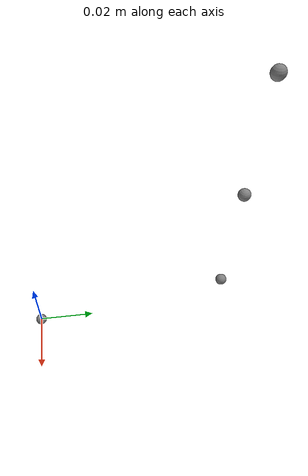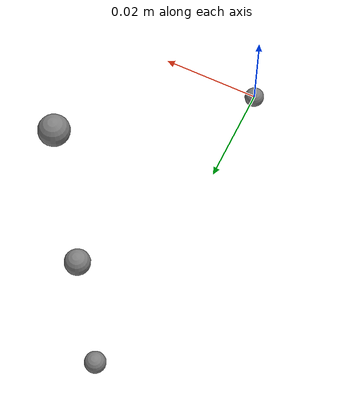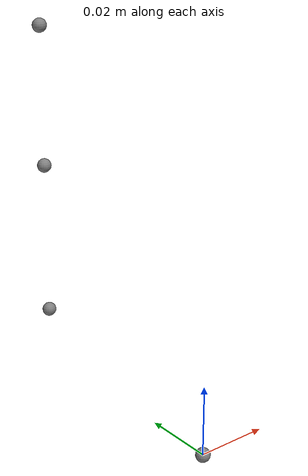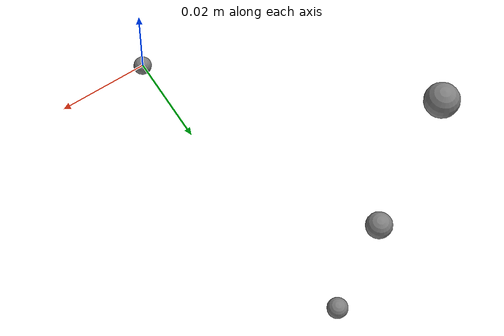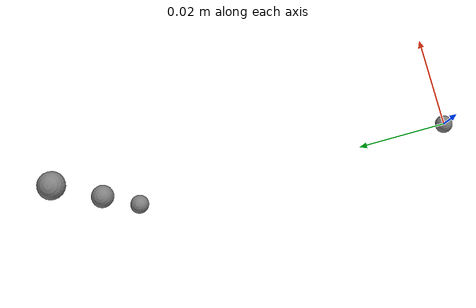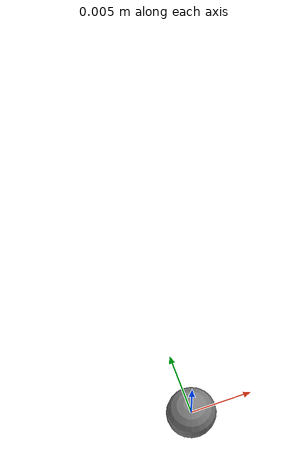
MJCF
<mujoco model="EXE-BM002-01-lift-payload1kg">
  <compiler autolimits="true" angle="radian"/>
  <option gravity="0 0 -9.81" integrator="implicitfast"
          timestep="0.000333333333" solver="Newton"
          iterations="200" tolerance="1e-12"/>
  <default>
    <geom contype="0" conaffinity="0" density="0" type="sphere" size="0.001"/>
  </default>
  <worldbody>
    <body name="housing_and_panel" pos="0 0 0">
      <inertial pos="0.0411706742 0.07 0.108237895" mass="0.870881979" fullinertia="0.00590534118 0.00474844645 0.00281351331 0 6.42556527e-05 0"/>
      <geom name="g_static" pos="0 0 0"/>
    </body>

    <!-- BODY-CRANK-SHAFT: revolute about the actual CAD crank axis, parallel to X.
         BODY-CRANK-JOINT-PIN is welded into it; see ASSUMPTIONS. -->
    <body name="crank" pos="0 0.07 0.06">
      <joint name="crank_hinge" type="hinge" axis="1 0 0" pos="0 0 0"
             damping="0" frictionloss="0" limited="false"/>
      <inertial pos="0.00849588939 0 -0.00226667282" mass="1.63427074" fullinertia="0.00106563242 0.00107603447 0.000946682844 0 8.114663e-05 0"/>
      <geom name="g_crank" pos="0 0 0"/>
      <site name="s_crank_bearing" pos="0 0 0" size="0.002"/>

      <!-- BODY-CONNECTING-ROD: revolute at the actual crank-joint axis -->
      <body name="rod" pos="0 0 -0.045">
        <joint name="crank_joint" type="hinge" axis="1 0 0" pos="0 0 0"
               damping="0" frictionloss="0" limited="false"/>
        <inertial pos="0.048 0 0.0425" mass="0.163446711" fullinertia="0.000126767146 0.000123649334 7.040533e-06 -0 0 -0"/>
        <geom name="g_rod" pos="0 0 0"/>
        <site name="s_crank_joint" pos="0 0 0" size="0.002"/>
        <site name="s_rod_far_end" pos="0 0 0.085" size="0.002"/>
      </body>
    </body>

    <body name="platform" pos="0 0 0">
      <joint name="platform_slide" type="slide" axis="0 0 1" pos="0 0 0" damping="0" frictionloss="0" limited="false"/>
      <inertial pos="0.0373933846 0.07 0.143402007" mass="1.09192128" fullinertia="0.000601878646 0.000353552181 0.000508322258 1.50463277e-35 1.84827112e-05 -3.85185989e-34"/>
      <geom name="g_platform" pos="0 0 0"/>
      <site name="s_guide" pos="0 0 0" size="0.002"/>
      <site name="s_platform_pin" pos="0 0.07 0.1"
            size="0.002"/>
    </body>
  </worldbody>

  <!-- the platform joint: the closed loop the slider-crank needs -->
  <equality>
    <connect name="platform_joint" body1="rod" body2="platform"
             anchor="0 0 0.085"
             solref="0.002 1"
             solimp="0.9999 0.99999 1e-06 0.5 2"/>
  </equality>

  <actuator>
    <general name="crank_drive" joint="crank_hinge" gaintype="fixed"
             biastype="affine" gainprm="1500 0 0"
             biasprm="0 -1500 -3"
             ctrlrange="-1000 1000"/>
  </actuator>

  <sensor>
    <force name="f_crank_bearing" site="s_crank_bearing"/>
    <torque name="t_crank_bearing" site="s_crank_bearing"/>
    <force name="f_crank_joint" site="s_crank_joint"/>
    <torque name="t_crank_joint" site="s_crank_joint"/>
    <force name="f_guide" site="s_guide"/>
    <torque name="t_guide" site="s_guide"/>
    <jointpos name="q_crank" joint="crank_hinge"/>
    <jointvel name="v_crank" joint="crank_hinge"/>
    <jointpos name="q_slide" joint="platform_slide"/><jointvel name="v_slide" joint="platform_slide"/>
    <jointpos name="q_rod" joint="crank_joint"/>
    <actuatorfrc name="tau_crank" actuator="crank_drive"/>
  </sensor>
</mujoco>
